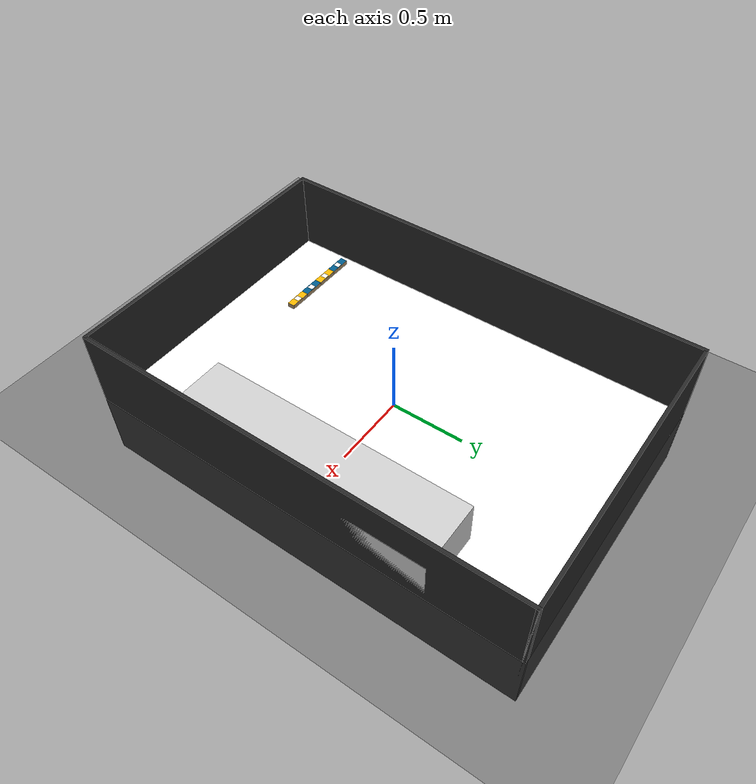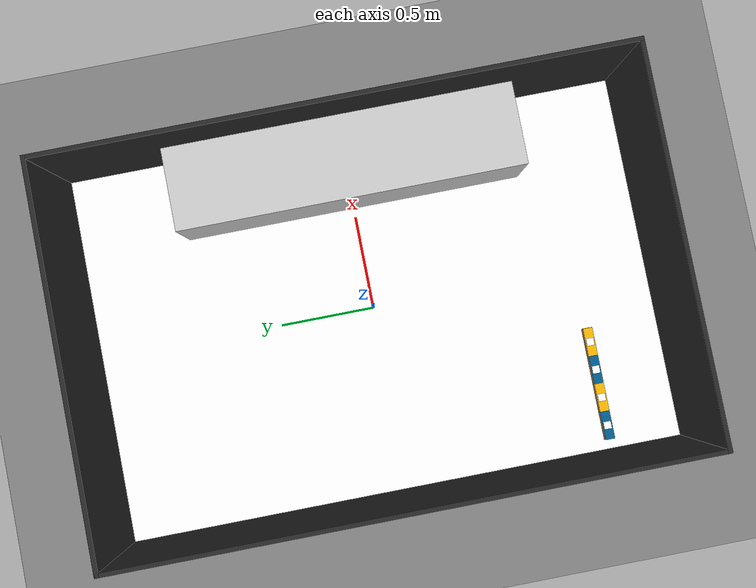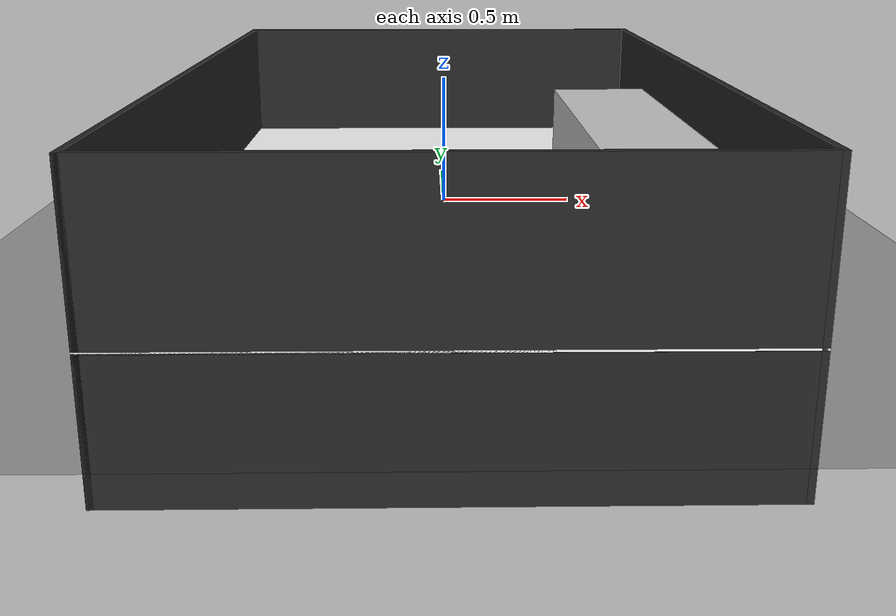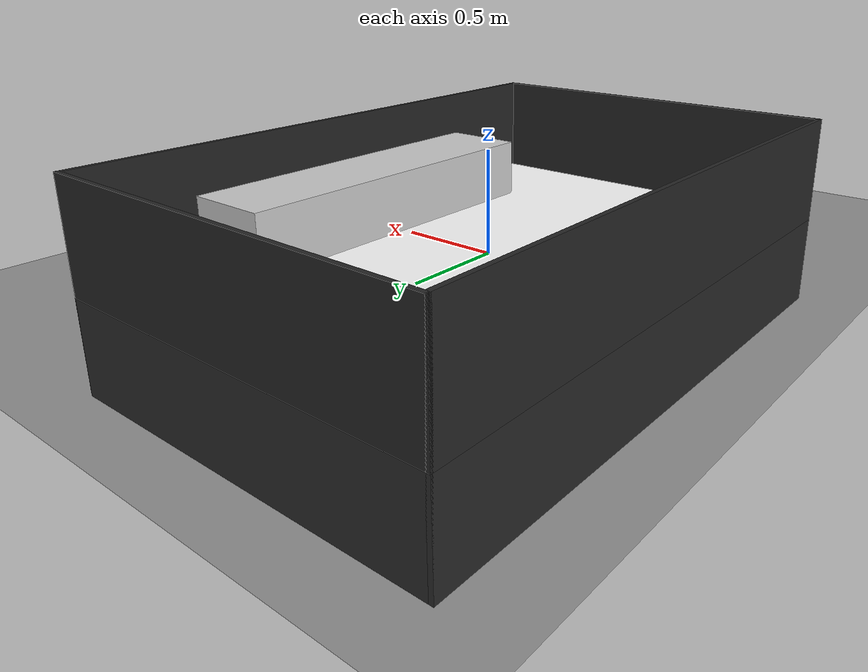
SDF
<?xml version="1.0"?>
<sdf version="1.9">
  <world name="eurobot_2026_arena">
    <!-- Set the background color -->
    <background>
      <color>0.7 0.7 0.7 1</color>
    </background>

    <!-- Add a light source -->
    <light type="directional" name="sun">
      <diffuse>1 1 1 1</diffuse>
      <specular>0.5 0.5 0.5 1</specular>
      <direction>-0.5 0.5 -1</direction>
    </light>

    <!-- Set the gravity of the world -->
    <gravity>0 0 -9.81</gravity>

    <!-- Set the physics engine -->
    <physics type="ode">
      <max_step_size>0.001</max_step_size>
      <real_time_factor>1</real_time_factor>
    </physics>
    <plugin
        filename="libignition-gazebo-physics-system.so"
        name="ignition::gazebo::systems::Physics">
    </plugin>
    <plugin
        filename="libignition-gazebo-user-commands-system.so"
        name="ignition::gazebo::systems::UserCommands">
    </plugin>
    <plugin
        filename="libignition-gazebo-scene-broadcaster-system.so"
        name="ignition::gazebo::systems::SceneBroadcaster">
    </plugin>

    <model name="ground_plane">
        <static>true</static>
        <link name="link">
            <collision name="collision">
            <geometry>
                <plane>
                <normal>0 0 1</normal>
                </plane>
            </geometry>
            </collision>
            <visual name="visual">
            <geometry>
                <plane>
                <normal>0 0 1</normal>
                <size>20 20</size>
                </plane>
            </geometry>
            <material>
                <ambient>0.8 0.8 0.8 1</ambient>
                <diffuse>0.2 0.2 0.2 1</diffuse>
                <specular>0.8 0.8 0.8 1</specular>
            </material>
            </visual>
        </link>
    </model>

    <!-- Include mat model -->
    <include>
      <uri>file://models/mat</uri>
      <pose>0 0 0 0 0 0</pose>
    </include>

    <!-- Competition crate groups: blue, yellow, blue, yellow -->
    <include>
      <name>crate_1</name>
      <uri>file://models/crate</uri>
      <pose>-0.85 -1.10 0.0185 0 0 0</pose>
    </include>

    <include>
      <name>crate_2</name>
      <uri>file://models/crate</uri>
      <pose>-0.70 -1.10 0.0185 3.14159 0 0</pose>
    </include>

    <include>
      <name>crate_3</name>
      <uri>file://models/crate</uri>
      <pose>-0.55 -1.10 0.0185 0 0 0</pose>
    </include>

    <include>
      <name>crate_4</name>
      <uri>file://models/crate</uri>
      <pose>-0.40 -1.10 0.0185 3.14159 0 0</pose>
    </include>

  </world>
</sdf>

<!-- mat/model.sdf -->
<sdf version="1.9">
  <!-- Aire de jeu 3000 x 2000 mm avec bordures 70 mm (h) x 22 mm (ép) incluses -->
  <model name="floor_mat">
    <static>true</static>

    <link name="floor_link">
      <!-- ===== Tapis (2 x 3 x 0.007 m) ===== -->
      <collision name="mat_collision">
        <geometry>
          <box><size>2 3 0.007</size></box>
        </geometry>
        <surface>
          <friction><ode><mu>0.9</mu><mu2>0.9</mu2></ode></friction>
        </surface>
      </collision>

      <visual name="mat_visual">
        <geometry>
          <box><size>2 3 0.007</size></box>
        </geometry>
        <material>
          <diffuse>1 1 1 1</diffuse>
          <pbr>
            <metal>
              <albedo_map>file://models/mat/table.png</albedo_map>
              <metalness>0.0</metalness>
              <roughness>0.8</roughness>
            </metal>
          </pbr>
        </material>
      </visual>

      <!-- ===== Plateforme centrale (450 x 1800 x 55 mm) ===== -->
      <collision name="platform_collision">
        <pose>0.775 0.0 0.031 0 0 0</pose>
        <geometry>
          <box><size>0.45 1.8 0.555</size></box> <!--actually the z size is 0.055 m -->
        </geometry>
        <surface>
          <friction><ode><mu>0.9</mu><mu2>0.9</mu2></ode></friction>
        </surface>
      </collision>

      <visual name="platform_visual">
        <pose>0.775 0.0 0.031 0 0 0</pose>
        <geometry>
          <box><size>0.45 1.8 0.555</size></box> <!-- same thing here -->
        </geometry>
        <material>
          <diffuse>0.8 0.8 0.8 1</diffuse>
          <pbr><metal><metalness>0.0</metalness><roughness>0.9</roughness></metal></pbr>
        </material>
      </visual>

      <!-- Longue +X -->
      <collision name="border_long_posX_collision">
        <pose>0.989 0 0.0385 0 0 0</pose>
        <geometry><box><size>0.022 3.0 1</size></box></geometry>
        <surface><friction><ode><mu>0.9</mu><mu2>0.9</mu2></ode></friction></surface>
      </collision>
      <visual name="border_long_posX_visual">
        <pose>0.989 0 0.0385 0 0 0</pose>
        <geometry><box><size>0.022 3.0 1</size></box></geometry>
        <material><diffuse>0.15 0.15 0.15 1</diffuse></material>
      </visual>

      <!-- Longue -X -->
      <collision name="border_long_negX_collision">
        <pose>-0.989 0 0.0385 0 0 0</pose>
        <geometry><box><size>0.022 3.0 1</size></box></geometry>
        <surface><friction><ode><mu>0.9</mu><mu2>0.9</mu2></ode></friction></surface>
      </collision>
      <visual name="border_long_negX_visual">
        <pose>-0.989 0 0.0385 0 0 0</pose>
        <geometry><box><size>0.022 3.0 1</size></box></geometry>
        <material><diffuse>0.15 0.15 0.15 1</diffuse></material>
      </visual>

      <!-- Courte +Y -->
      <collision name="border_short_posY_collision">
        <pose>0 1.489 0.0385 0 0 0</pose>
        <geometry><box><size>2.0 0.022 1</size></box></geometry>
        <surface><friction><ode><mu>0.9</mu><mu2>0.9</mu2></ode></friction></surface>
      </collision>
      <visual name="border_short_posY_visual">
        <pose>0 1.489 0.0385 0 0 0</pose>
        <geometry><box><size>2.0 0.022 1</size></box></geometry>
        <material><diffuse>0.15 0.15 0.15 1</diffuse></material>
      </visual>

      <!-- Courte -Y -->
      <collision name="border_short_negY_collision">
        <pose>0 -1.489 0.0385 0 0 0</pose>
        <geometry><box><size>2.0 0.022 1</size></box></geometry>
        <surface><friction><ode><mu>0.9</mu><mu2>0.9</mu2></ode></friction></surface>
      </collision>
      <visual name="border_short_negY_visual">
        <pose>0 -1.489 0.0385 0 0 0</pose>
        <geometry><box><size>2.0 0.022 1</size></box></geometry>
        <material><diffuse>0.15 0.15 0.15 1</diffuse></material>
      </visual>

    </link>
  </model>
</sdf>

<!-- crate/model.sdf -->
<sdf version="1.9">
  <model name="crate_nuts" canonical_link="body">
    <static>false</static>

    <link name="body">
      <!-- Inertial properties (m = 0.17 kg; a=0.15, b=0.05, c=0.03 m) -->
      <inertial>
        <mass>0.17</mass>
        <inertia>
          <!-- Ixx = 1/12 m (b^2 + c^2) -->
          <ixx>0.000048167</ixx>
          <!-- Iyy = 1/12 m (a^2 + c^2) -->
          <iyy>0.000331500</iyy>
          <!-- Izz = 1/12 m (a^2 + b^2) -->
          <izz>0.000354167</izz>
          <ixy>0</ixy>
          <ixz>0</ixz>
          <iyz>0</iyz>
        </inertia>
      </inertial>

      <!-- Collision -->
      <collision name="collision">
        <geometry>
          <box>
            <size>0.15 0.05 0.03</size>
          </box>
        </geometry>
        <surface>
          <friction>
            <ode>
              <mu>1.0</mu>
              <mu2>1.0</mu2>
            </ode>
          </friction>
          <contact>
            <ode>
              <kp>1e6</kp>
              <kd>1</kd>
              <max_vel>0.1</max_vel>
              <min_depth>0.001</min_depth>
            </ode>
          </contact>
          <bounce>
            <restitution_coefficient>0.0</restitution_coefficient>
            <threshold>1e6</threshold>
          </bounce>
        </surface>
      </collision>

      <!-- Visual 1: base bois -->
      <visual name="visual_wood">
        <geometry>
          <box>
            <size>0.15 0.05 0.03</size>
          </box>
        </geometry>
        <material>
          <ambient>0.65 0.55 0.40 1</ambient>
          <diffuse>0.65 0.55 0.40 1</diffuse>
          <specular>0.2 0.2 0.2 1</specular>
        </material>
      </visual>

      <!-- Visual 2: face +Z (dessus) peinte BLEUE -->
      <visual name="top_blue_xy">
        <!-- pose: x y z R P Y -->
        <pose>0 0 0.0155 0 0 0</pose>
        <geometry>
          <!-- plaque fine parallèle au plan XY -->
          <box>
            <size>0.15 0.05 0.0005</size>
          </box>
        </geometry>
        <material>
          <ambient>0.00 0.36 0.55 1</ambient>
          <diffuse>0.00 0.36 0.55 1</diffuse>
          <specular>0.2 0.2 0.2 1</specular>
        </material>
        <cast_shadows>false</cast_shadows>
      </visual>

      <!-- Visual 3: face -Z (dessous) peinte JAUNE cahque face fait 0.0005 donc on a plus 0.001 sur la hauteur des crates-->
      <visual name="bottom_yellow_xy">
        <pose>0 0 -0.0155 0 0 0</pose>
        <geometry>
          <box>
            <size>0.15 0.05 0.0005</size>
          </box>
        </geometry>
        <material>
          <ambient>0.97 0.71 0.00 1</ambient>
          <diffuse>0.97 0.71 0.00 1</diffuse>
          <specular>0.2 0.2 0.2 1</specular>
        </material>
        <cast_shadows>false</cast_shadows>
      </visual>

      <visual name="aruco_top">
        <pose>0 0 0.016 0 0 0</pose>
        <cast_shadows>false</cast_shadows>
        <geometry>
          <plane>
            <size>0.04 0.04</size>
            <normal>0 0 1</normal>
            <texture>
              <size>0.03 0.03</size>
            </texture>
          </plane>
        </geometry>
        <material>
          <diffuse>1 1 1 1</diffuse>
          <pbr>
            <metal>
              <albedo_map>file://models/crate/aruco_36.png</albedo_map>
            </metal>
          </pbr>
          <double_sided>true</double_sided>
        </material>
      </visual>

      <visual name="aruco_bottom">  <!-- faudrait que je rajoute le vynile, does it really matter? -->
        <pose>0 0 -0.016 0 0 0</pose>
        <cast_shadows>false</cast_shadows>
        <geometry>
          <plane>
            <size>0.04 0.04</size>
            <normal>0 0 1</normal>
            <texture>
              <size>0.03 0.03</size>
            </texture>
          </plane>
        </geometry>
        <material>
          <diffuse>1 1 1 1</diffuse>
          <pbr>
            <metal>
              <albedo_map>file://models/crate/aruco_47.png</albedo_map>
            </metal>
          </pbr>
          <double_sided>true</double_sided>
        </material>
      </visual>

    </link>
  </model>
</sdf>
